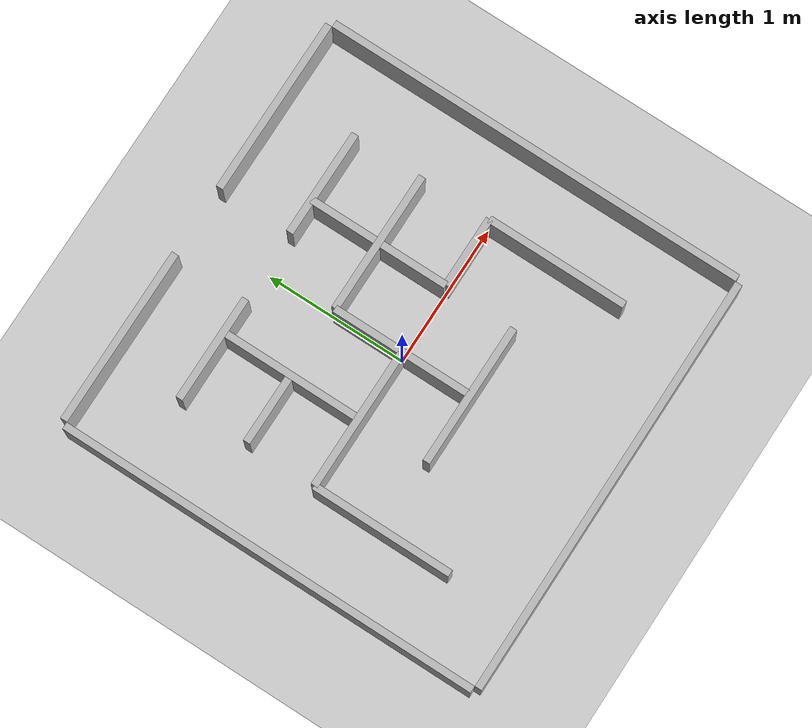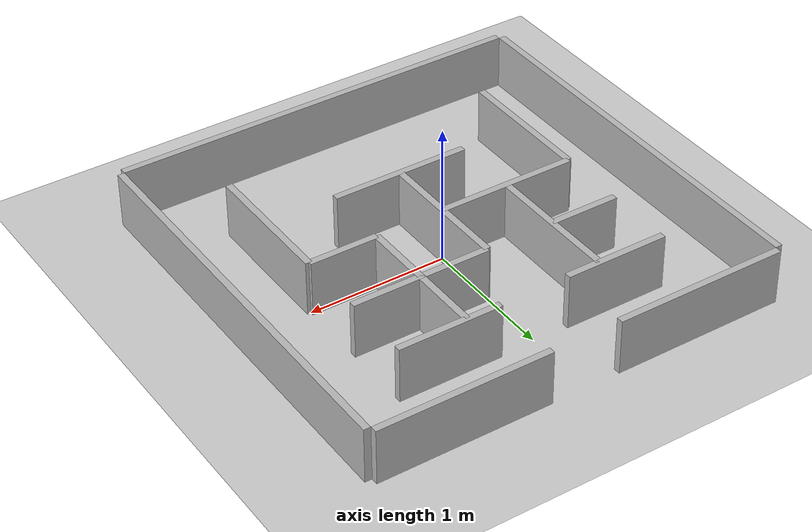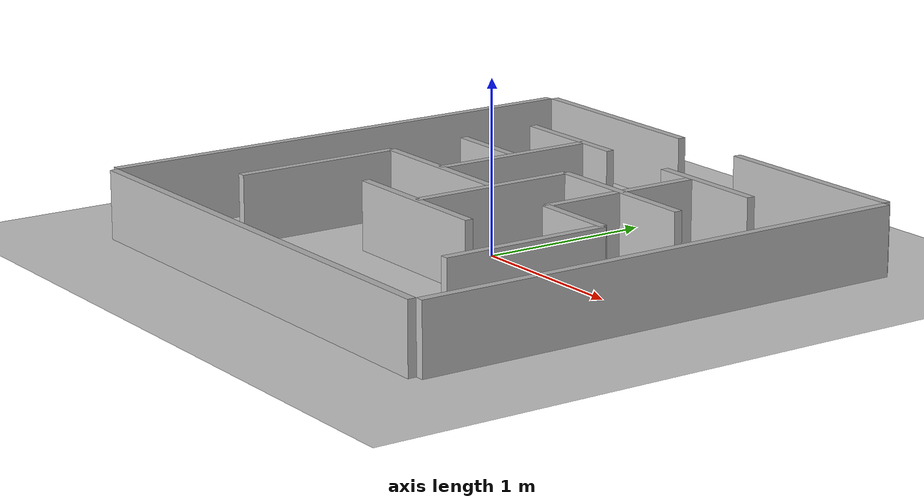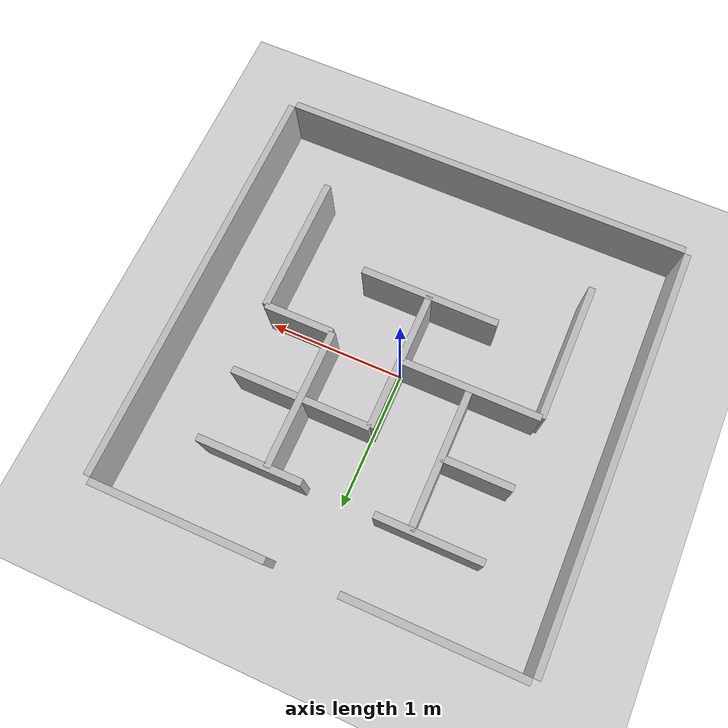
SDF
<?xml version="1.0" ?>
<sdf version="1.6">
  <world name="tb3_maze">

    <!-- environment -->
    <include><uri>model://ground_plane</uri></include>
    <include><uri>model://sun</uri></include>

    <!-- =========================
         OUTER BOUNDARY (with gap)
         ========================= -->

    <!-- North wall split for entrance -->
    <model name="north_west">
      <static>true</static>
      <link name="link">
        <collision name="col"><geometry><box><size>1.25 0.05 0.4</size></box></geometry></collision>
        <visual name="vis"><geometry><box><size>1.25 0.05 0.4</size></box></geometry></visual>
        <pose>-0.875 1.525 0.2 0 0 0</pose>
      </link>
    </model>

    <model name="north_east">
      <static>true</static>
      <link name="link">
        <collision name="col"><geometry><box><size>1.25 0.05 0.4</size></box></geometry></collision>
        <visual name="vis"><geometry><box><size>1.25 0.05 0.4</size></box></geometry></visual>
        <pose>0.875 1.525 0.2 0 0 0</pose>
      </link>
    </model>

    <!-- Solid south, east, west walls -->
    <model name="south">
      <static>true</static>
      <link name="link">
        <collision name="col"><geometry><box><size>3.0 0.05 0.4</size></box></geometry></collision>
        <visual name="vis"><geometry><box><size>3.0 0.05 0.4</size></box></geometry></visual>
        <pose>0 -1.525 0.2 0 0 0</pose>
      </link>
    </model>

    <model name="east">
      <static>true</static>
      <link name="link">
        <collision name="col"><geometry><box><size>0.05 3.0 0.4</size></box></geometry></collision>
        <visual name="vis"><geometry><box><size>0.05 3.0 0.4</size></box></geometry></visual>
        <pose>1.525 0 0.2 0 0 0</pose>
      </link>
    </model>

    <model name="west">
      <static>true</static>
      <link name="link">
        <collision name="col"><geometry><box><size>0.05 3.0 0.4</size></box></geometry></collision>
        <visual name="vis"><geometry><box><size>0.05 3.0 0.4</size></box></geometry></visual>
        <pose>-1.525 0 0.2 0 0 0</pose>
      </link>
    </model>

    <!-- =========================
         INNER MAZE (0.5 m grid)
         ========================= -->

    <!-- Horizontal segments -->
    <model name="h_y1_x-1.0_to_-0.25">
      <static>true</static>
      <link name="link">
        <collision name="col"><geometry><box><size>0.75 0.05 0.4</size></box></geometry></collision>
        <visual name="vis"><geometry><box><size>0.75 0.05 0.4</size></box></geometry></visual>
        <pose>-0.625 1.00 0.2 0 0 0</pose>
      </link>
    </model>
    <model name="h_y1_x0.25_to_1.0">
      <static>true</static>
      <link name="link">
        <collision name="col"><geometry><box><size>0.75 0.05 0.4</size></box></geometry></collision>
        <visual name="vis"><geometry><box><size>0.75 0.05 0.4</size></box></geometry></visual>
        <pose>0.625 1.00 0.2 0 0 0</pose>
      </link>
    </model>

    <model name="h_y0.5_x-1.0_to_-0.5">
      <static>true</static>
      <link name="link">
        <collision name="col"><geometry><box><size>0.5 0.05 0.4</size></box></geometry></collision>
        <visual name="vis"><geometry><box><size>0.5 0.05 0.4</size></box></geometry></visual>
        <pose>-0.75 0.50 0.2 0 0 0</pose>
      </link>
    </model>
    <model name="h_y0.5_x0.0_to_1.0">
      <static>true</static>
      <link name="link">
        <collision name="col"><geometry><box><size>1.0 0.05 0.4</size></box></geometry></collision>
        <visual name="vis"><geometry><box><size>1.0 0.05 0.4</size></box></geometry></visual>
        <pose>0.5 0.50 0.2 0 0 0</pose>
      </link>
    </model>

    <model name="h_y0.0_x-1.0_to_0.0">
      <static>true</static>
      <link name="link">
        <collision name="col"><geometry><box><size>1.0 0.05 0.4</size></box></geometry></collision>
        <visual name="vis"><geometry><box><size>1.0 0.05 0.4</size></box></geometry></visual>
        <pose>-0.5 0.00 0.2 0 0 0</pose>
      </link>
    </model>
    <model name="h_y0.0_x0.5_to_1.0">
      <static>true</static>
      <link name="link">
        <collision name="col"><geometry><box><size>0.5 0.05 0.4</size></box></geometry></collision>
        <visual name="vis"><geometry><box><size>0.5 0.05 0.4</size></box></geometry></visual>
        <pose>0.75 0.00 0.2 0 0 0</pose>
      </link>
    </model>

    <model name="h_y-0.5_x-0.5_to_0.5">
      <static>true</static>
      <link name="link">
        <collision name="col"><geometry><box><size>1.0 0.05 0.4</size></box></geometry></collision>
        <visual name="vis"><geometry><box><size>1.0 0.05 0.4</size></box></geometry></visual>
        <pose>0.0 -0.50 0.2 0 0 0</pose>
      </link>
    </model>

    <!-- Vertical segments -->
    <model name="v_x-1.0_y-1.0_to_0.0">
      <static>true</static>
      <link name="link">
        <collision name="col"><geometry><box><size>0.05 1.0 0.4</size></box></geometry></collision>
        <visual name="vis"><geometry><box><size>0.05 1.0 0.4</size></box></geometry></visual>
        <pose>-1.00 -0.50 0.2 0 0 0</pose>
      </link>
    </model>

    <model name="v_x-0.5_y0.0_to_1.0">
      <static>true</static>
      <link name="link">
        <collision name="col"><geometry><box><size>0.05 1.0 0.4</size></box></geometry></collision>
        <visual name="vis"><geometry><box><size>0.05 1.0 0.4</size></box></geometry></visual>
        <pose>-0.50 0.50 0.2 0 0 0</pose>
      </link>
    </model>

    <model name="v_x0.0_y-0.5_to_0.5">
      <static>true</static>
      <link name="link">
        <collision name="col"><geometry><box><size>0.05 1.0 0.4</size></box></geometry></collision>
        <visual name="vis"><geometry><box><size>0.05 1.0 0.4</size></box></geometry></visual>
        <pose>0.00 0.00 0.2 0 0 0</pose>
      </link>
    </model>

    <model name="v_x0.5_y0.0_to_1.0">
      <static>true</static>
      <link name="link">
        <collision name="col"><geometry><box><size>0.05 1.0 0.4</size></box></geometry></collision>
        <visual name="vis"><geometry><box><size>0.05 1.0 0.4</size></box></geometry></visual>
        <pose>0.50 0.50 0.2 0 0 0</pose>
      </link>
    </model>

    <model name="v_x1.0_y-1.0_to_0.0">
      <static>true</static>
      <link name="link">
        <collision name="col"><geometry><box><size>0.05 1.0 0.4</size></box></geometry></collision>
        <visual name="vis"><geometry><box><size>0.05 1.0 0.4</size></box></geometry></visual>
        <pose>1.00 -0.50 0.2 0 0 0</pose>
      </link>
    </model>

  </world>
</sdf>
